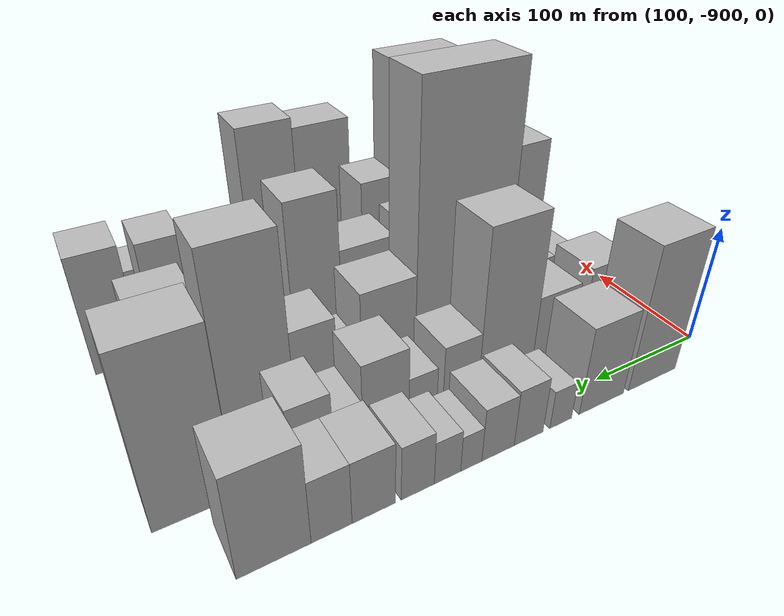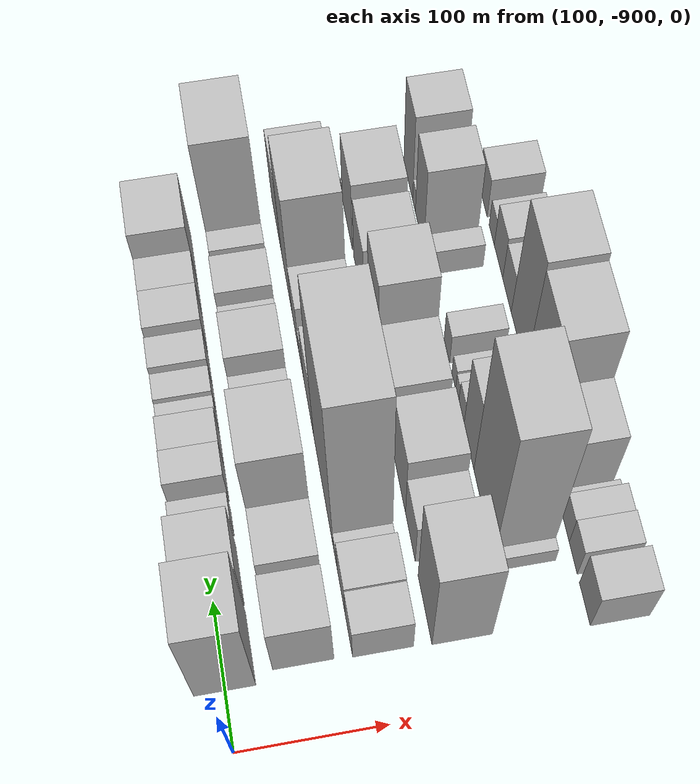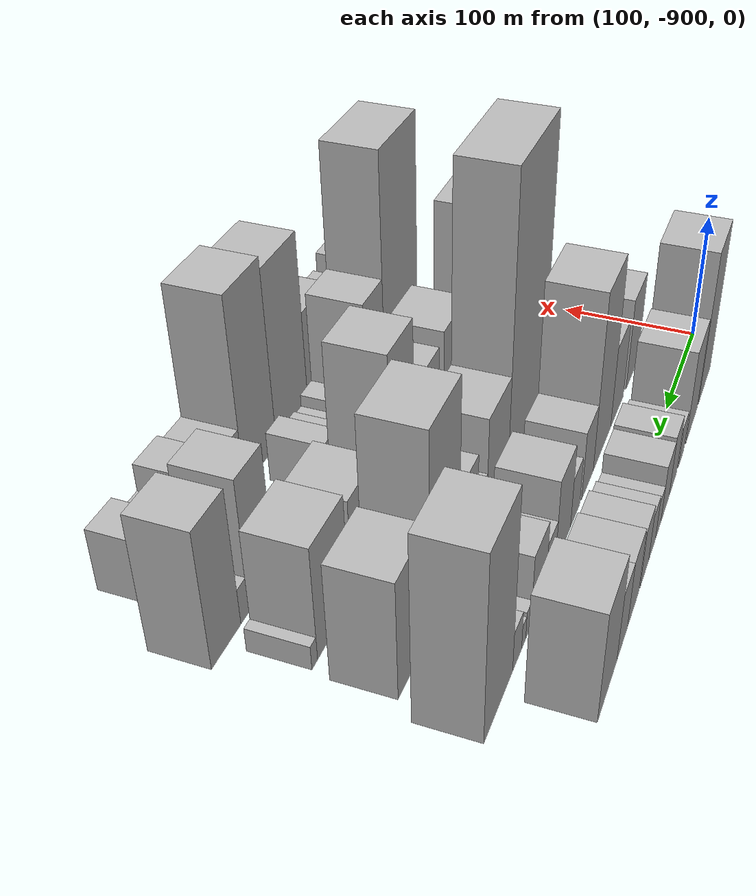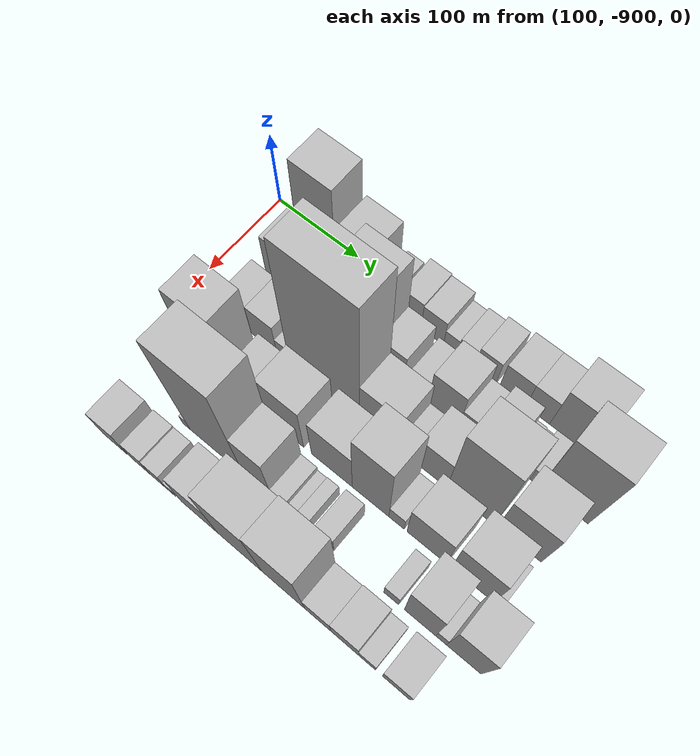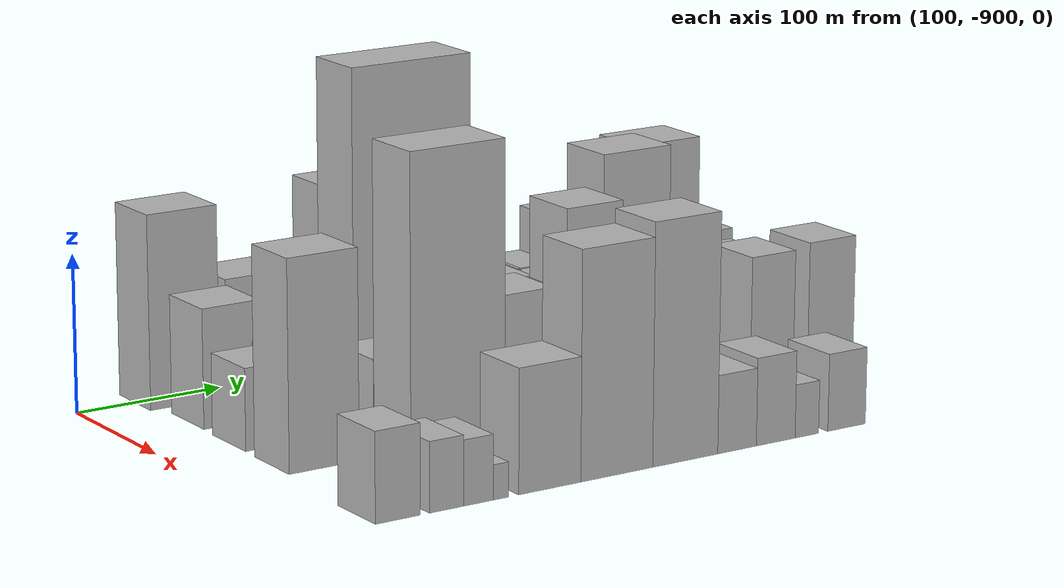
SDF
<sdf version="1.6">
 <world name="default">
  <model name="building_1">
   <static>1</static>
   <pose>100.0000 -835.8675 0 0.000000 0.000000 0.000000</pose>
   <link name="link">
    <pose>0 0 61.50 0 0 0</pose>
    <collision name="collision"><geometry><box><size>40.0000 48.2651 123.0000</size></box></geometry></collision>
    <visual name="visual">
     <cast_shadows>0</cast_shadows>
     <geometry><box><size>40.0000 48.2651 123.0000</size></box></geometry>
     <material>
      <script>
       <uri>model://HANNAS_wall/materials/scripts</uri>
       <uri>model://HANNAS_wall/materials/textures</uri>
       <name>vrc/HANNAS_wall</name>
      </script>
     </material>
    </visual>
   </link>
  </model>
  <model name="building_2">
   <static>1</static>
   <pose>100.0000 -785.6989 0 0.000000 0.000000 0.000000</pose>
   <link name="link">
    <pose>0 0 37.50 0 0 0</pose>
    <collision name="collision"><geometry><box><size>40.0000 42.0720 75.0000</size></box></geometry></collision>
    <visual name="visual">
     <cast_shadows>0</cast_shadows>
     <geometry><box><size>40.0000 42.0720 75.0000</size></box></geometry>
     <material>
      <script>
       <uri>model://HANNAS_wall/materials/scripts</uri>
       <uri>model://HANNAS_wall/materials/textures</uri>
       <name>vrc/HANNAS_wall</name>
      </script>
     </material>
    </visual>
   </link>
  </model>
  <model name="building_3">
   <static>1</static>
   <pose>100.0000 -747.9911 0 0.000000 0.000000 0.000000</pose>
   <link name="link">
    <pose>0 0 16.50 0 0 0</pose>
    <collision name="collision"><geometry><box><size>40.0000 19.3437 33.0000</size></box></geometry></collision>
    <visual name="visual">
     <cast_shadows>0</cast_shadows>
     <geometry><box><size>40.0000 19.3437 33.0000</size></box></geometry>
     <material>
      <script>
       <uri>model://HANNAS_wall/materials/scripts</uri>
       <uri>model://HANNAS_wall/materials/textures</uri>
       <name>vrc/HANNAS_wall</name>
      </script>
     </material>
    </visual>
   </link>
  </model>
  <model name="building_4">
   <static>1</static>
   <pose>100.0000 -720.0713 0 0.000000 0.000000 0.000000</pose>
   <link name="link">
    <pose>0 0 24.00 0 0 0</pose>
    <collision name="collision"><geometry><box><size>40.0000 24.4960 48.0000</size></box></geometry></collision>
    <visual name="visual">
     <cast_shadows>0</cast_shadows>
     <geometry><box><size>40.0000 24.4960 48.0000</size></box></geometry>
     <material>
      <script>
       <uri>model://HANNAS_wall/materials/scripts</uri>
       <uri>model://HANNAS_wall/materials/textures</uri>
       <name>vrc/HANNAS_wall</name>
      </script>
     </material>
    </visual>
   </link>
  </model>
  <model name="building_5">
   <static>1</static>
   <pose>100.0000 -694.7094 0 0.000000 0.000000 0.000000</pose>
   <link name="link">
    <pose>0 0 22.50 0 0 0</pose>
    <collision name="collision"><geometry><box><size>40.0000 26.2278 45.0000</size></box></geometry></collision>
    <visual name="visual">
     <cast_shadows>0</cast_shadows>
     <geometry><box><size>40.0000 26.2278 45.0000</size></box></geometry>
     <material>
      <script>
       <uri>model://HANNAS_wall/materials/scripts</uri>
       <uri>model://HANNAS_wall/materials/textures</uri>
       <name>vrc/HANNAS_wall</name>
      </script>
     </material>
    </visual>
   </link>
  </model>
  <model name="building_6">
   <static>1</static>
   <pose>100.0000 -673.3801 0 0.000000 0.000000 0.000000</pose>
   <link name="link">
    <pose>0 0 15.00 0 0 0</pose>
    <collision name="collision"><geometry><box><size>40.0000 16.4307 30.0000</size></box></geometry></collision>
    <visual name="visual">
     <cast_shadows>0</cast_shadows>
     <geometry><box><size>40.0000 16.4307 30.0000</size></box></geometry>
     <material>
      <script>
       <uri>model://HANNAS_wall/materials/scripts</uri>
       <uri>model://HANNAS_wall/materials/textures</uri>
       <name>vrc/HANNAS_wall</name>
      </script>
     </material>
    </visual>
   </link>
  </model>
  <model name="building_7">
   <static>1</static>
   <pose>100.0000 -655.2093 0 0.000000 0.000000 0.000000</pose>
   <link name="link">
    <pose>0 0 18.00 0 0 0</pose>
    <collision name="collision"><geometry><box><size>40.0000 19.9109 36.0000</size></box></geometry></collision>
    <visual name="visual">
     <cast_shadows>0</cast_shadows>
     <geometry><box><size>40.0000 19.9109 36.0000</size></box></geometry>
     <material>
      <script>
       <uri>model://HANNAS_wall/materials/scripts</uri>
       <uri>model://HANNAS_wall/materials/textures</uri>
       <name>vrc/HANNAS_wall</name>
      </script>
     </material>
    </visual>
   </link>
  </model>
  <model name="building_8">
   <static>1</static>
   <pose>100.0000 -633.3928 0 0.000000 0.000000 0.000000</pose>
   <link name="link">
    <pose>0 0 22.50 0 0 0</pose>
    <collision name="collision"><geometry><box><size>40.0000 23.7222 45.0000</size></box></geometry></collision>
    <visual name="visual">
     <cast_shadows>0</cast_shadows>
     <geometry><box><size>40.0000 23.7222 45.0000</size></box></geometry>
     <material>
      <script>
       <uri>model://HANNAS_wall/materials/scripts</uri>
       <uri>model://HANNAS_wall/materials/textures</uri>
       <name>vrc/HANNAS_wall</name>
      </script>
     </material>
    </visual>
   </link>
  </model>
  <model name="building_9">
   <static>1</static>
   <pose>100.0000 -602.8302 0 0.000000 0.000000 0.000000</pose>
   <link name="link">
    <pose>0 0 25.50 0 0 0</pose>
    <collision name="collision"><geometry><box><size>40.0000 29.4031 51.0000</size></box></geometry></collision>
    <visual name="visual">
     <cast_shadows>0</cast_shadows>
     <geometry><box><size>40.0000 29.4031 51.0000</size></box></geometry>
     <material>
      <script>
       <uri>model://HANNAS_wall/materials/scripts</uri>
       <uri>model://HANNAS_wall/materials/textures</uri>
       <name>vrc/HANNAS_wall</name>
      </script>
     </material>
    </visual>
   </link>
  </model>
  <model name="building_10">
   <static>1</static>
   <pose>100.0000 -575.0428 0 0.000000 0.000000 0.000000</pose>
   <link name="link">
    <pose>0 0 25.50 0 0 0</pose>
    <collision name="collision"><geometry><box><size>40.0000 26.1718 51.0000</size></box></geometry></collision>
    <visual name="visual">
     <cast_shadows>0</cast_shadows>
     <geometry><box><size>40.0000 26.1718 51.0000</size></box></geometry>
     <material>
      <script>
       <uri>model://HANNAS_wall/materials/scripts</uri>
       <uri>model://HANNAS_wall/materials/textures</uri>
       <name>vrc/HANNAS_wall</name>
      </script>
     </material>
    </visual>
   </link>
  </model>
  <model name="building_11">
   <static>1</static>
   <pose>100.0000 -539.6976 0 0.000000 0.000000 0.000000</pose>
   <link name="link">
    <pose>0 0 40.50 0 0 0</pose>
    <collision name="collision"><geometry><box><size>40.0000 44.5184 81.0000</size></box></geometry></collision>
    <visual name="visual">
     <cast_shadows>0</cast_shadows>
     <geometry><box><size>40.0000 44.5184 81.0000</size></box></geometry>
     <material>
      <script>
       <uri>model://HANNAS_wall/materials/scripts</uri>
       <uri>model://HANNAS_wall/materials/textures</uri>
       <name>vrc/HANNAS_wall</name>
      </script>
     </material>
    </visual>
   </link>
  </model>
  <model name="building_59">
   <static>1</static>
   <pose>152.0000 -832.2248 0 0.000000 0.000000 0.000000</pose>
   <link name="link">
    <pose>0 0 37.50 0 0 0</pose>
    <collision name="collision"><geometry><box><size>40.0000 39.5504 75.0000</size></box></geometry></collision>
    <visual name="visual">
     <cast_shadows>0</cast_shadows>
     <geometry><box><size>40.0000 39.5504 75.0000</size></box></geometry>
     <material>
      <script>
       <uri>model://HANNAS_wall/materials/scripts</uri>
       <uri>model://HANNAS_wall/materials/textures</uri>
       <name>vrc/HANNAS_wall</name>
      </script>
     </material>
    </visual>
   </link>
  </model>
  <model name="building_60">
   <static>1</static>
   <pose>152.0000 -784.2301 0 0.000000 0.000000 0.000000</pose>
   <link name="link">
    <pose>0 0 33.00 0 0 0</pose>
    <collision name="collision"><geometry><box><size>40.0000 38.4390 66.0000</size></box></geometry></collision>
    <visual name="visual">
     <cast_shadows>0</cast_shadows>
     <geometry><box><size>40.0000 38.4390 66.0000</size></box></geometry>
     <material>
      <script>
       <uri>model://HANNAS_wall/materials/scripts</uri>
       <uri>model://HANNAS_wall/materials/textures</uri>
       <name>vrc/HANNAS_wall</name>
      </script>
     </material>
    </visual>
   </link>
  </model>
  <model name="building_61">
   <static>1</static>
   <pose>152.0000 -740.5774 0 0.000000 0.000000 0.000000</pose>
   <link name="link">
    <pose>0 0 69.00 0 0 0</pose>
    <collision name="collision"><geometry><box><size>40.0000 48.8663 138.0000</size></box></geometry></collision>
    <visual name="visual">
     <cast_shadows>0</cast_shadows>
     <geometry><box><size>40.0000 48.8663 138.0000</size></box></geometry>
     <material>
      <script>
       <uri>model://HANNAS_wall/materials/scripts</uri>
       <uri>model://HANNAS_wall/materials/textures</uri>
       <name>vrc/HANNAS_wall</name>
      </script>
     </material>
    </visual>
   </link>
  </model>
  <model name="building_62">
   <static>1</static>
   <pose>152.0000 -700.9382 0 0.000000 0.000000 0.000000</pose>
   <link name="link">
    <pose>0 0 27.00 0 0 0</pose>
    <collision name="collision"><geometry><box><size>40.0000 30.4121 54.0000</size></box></geometry></collision>
    <visual name="visual">
     <cast_shadows>0</cast_shadows>
     <geometry><box><size>40.0000 30.4121 54.0000</size></box></geometry>
     <material>
      <script>
       <uri>model://HANNAS_wall/materials/scripts</uri>
       <uri>model://HANNAS_wall/materials/textures</uri>
       <name>vrc/HANNAS_wall</name>
      </script>
     </material>
    </visual>
   </link>
  </model>
  <model name="building_63">
   <static>1</static>
   <pose>152.0000 -669.3956 0 0.000000 0.000000 0.000000</pose>
   <link name="link">
    <pose>0 0 19.50 0 0 0</pose>
    <collision name="collision"><geometry><box><size>40.0000 22.6730 39.0000</size></box></geometry></collision>
    <visual name="visual">
     <cast_shadows>0</cast_shadows>
     <geometry><box><size>40.0000 22.6730 39.0000</size></box></geometry>
     <material>
      <script>
       <uri>model://HANNAS_wall/materials/scripts</uri>
       <uri>model://HANNAS_wall/materials/textures</uri>
       <name>vrc/HANNAS_wall</name>
      </script>
     </material>
    </visual>
   </link>
  </model>
  <model name="building_64">
   <static>1</static>
   <pose>152.0000 -640.3801 0 0.000000 0.000000 0.000000</pose>
   <link name="link">
    <pose>0 0 33.00 0 0 0</pose>
    <collision name="collision"><geometry><box><size>40.0000 35.3580 66.0000</size></box></geometry></collision>
    <visual name="visual">
     <cast_shadows>0</cast_shadows>
     <geometry><box><size>40.0000 35.3580 66.0000</size></box></geometry>
     <material>
      <script>
       <uri>model://HANNAS_wall/materials/scripts</uri>
       <uri>model://HANNAS_wall/materials/textures</uri>
       <name>vrc/HANNAS_wall</name>
      </script>
     </material>
    </visual>
   </link>
  </model>
  <model name="building_65">
   <static>1</static>
   <pose>152.0000 -612.0106 0 0.000000 0.000000 0.000000</pose>
   <link name="link">
    <pose>0 0 18.00 0 0 0</pose>
    <collision name="collision"><geometry><box><size>40.0000 21.3810 36.0000</size></box></geometry></collision>
    <visual name="visual">
     <cast_shadows>0</cast_shadows>
     <geometry><box><size>40.0000 21.3810 36.0000</size></box></geometry>
     <material>
      <script>
       <uri>model://HANNAS_wall/materials/scripts</uri>
       <uri>model://HANNAS_wall/materials/textures</uri>
       <name>vrc/HANNAS_wall</name>
      </script>
     </material>
    </visual>
   </link>
  </model>
  <model name="building_66">
   <static>1</static>
   <pose>152.0000 -586.1350 0 0.000000 0.000000 0.000000</pose>
   <link name="link">
    <pose>0 0 27.00 0 0 0</pose>
    <collision name="collision"><geometry><box><size>40.0000 30.3704 54.0000</size></box></geometry></collision>
    <visual name="visual">
     <cast_shadows>0</cast_shadows>
     <geometry><box><size>40.0000 30.3704 54.0000</size></box></geometry>
     <material>
      <script>
       <uri>model://HANNAS_wall/materials/scripts</uri>
       <uri>model://HANNAS_wall/materials/textures</uri>
       <name>vrc/HANNAS_wall</name>
      </script>
     </material>
    </visual>
   </link>
  </model>
  <model name="building_67">
   <static>1</static>
   <pose>152.0000 -565.7380 0 0.000000 0.000000 0.000000</pose>
   <link name="link">
    <pose>0 0 10.50 0 0 0</pose>
    <collision name="collision"><geometry><box><size>40.0000 10.4235 21.0000</size></box></geometry></collision>
    <visual name="visual">
     <cast_shadows>0</cast_shadows>
     <geometry><box><size>40.0000 10.4235 21.0000</size></box></geometry>
     <material>
      <script>
       <uri>model://HANNAS_wall/materials/scripts</uri>
       <uri>model://HANNAS_wall/materials/textures</uri>
       <name>vrc/HANNAS_wall</name>
      </script>
     </material>
    </visual>
   </link>
  </model>
  <model name="building_68">
   <static>1</static>
   <pose>152.0000 -556.4889 0 0.000000 0.000000 0.000000</pose>
   <link name="link">
    <pose>0 0 9.00 0 0 0</pose>
    <collision name="collision"><geometry><box><size>40.0000 8.0748 18.0000</size></box></geometry></collision>
    <visual name="visual">
     <cast_shadows>0</cast_shadows>
     <geometry><box><size>40.0000 8.0748 18.0000</size></box></geometry>
     <material>
      <script>
       <uri>model://HANNAS_wall/materials/scripts</uri>
       <uri>model://HANNAS_wall/materials/textures</uri>
       <name>vrc/HANNAS_wall</name>
      </script>
     </material>
    </visual>
   </link>
  </model>
  <model name="building_69">
   <static>1</static>
   <pose>152.0000 -543.8938 0 0.000000 0.000000 0.000000</pose>
   <link name="link">
    <pose>0 0 15.00 0 0 0</pose>
    <collision name="collision"><geometry><box><size>40.0000 17.1153 30.0000</size></box></geometry></collision>
    <visual name="visual">
     <cast_shadows>0</cast_shadows>
     <geometry><box><size>40.0000 17.1153 30.0000</size></box></geometry>
     <material>
      <script>
       <uri>model://HANNAS_wall/materials/scripts</uri>
       <uri>model://HANNAS_wall/materials/textures</uri>
       <name>vrc/HANNAS_wall</name>
      </script>
     </material>
    </visual>
   </link>
  </model>
  <model name="building_70">
   <static>1</static>
   <pose>152.0000 -509.8802 0 0.000000 0.000000 0.000000</pose>
   <link name="link">
    <pose>0 0 67.50 0 0 0</pose>
    <collision name="collision"><geometry><box><size>40.0000 50.9121 135.0000</size></box></geometry></collision>
    <visual name="visual">
     <cast_shadows>0</cast_shadows>
     <geometry><box><size>40.0000 50.9121 135.0000</size></box></geometry>
     <material>
      <script>
       <uri>model://HANNAS_wall/materials/scripts</uri>
       <uri>model://HANNAS_wall/materials/textures</uri>
       <name>vrc/HANNAS_wall</name>
      </script>
     </material>
    </visual>
   </link>
  </model>
  <model name="building_112">
   <static>1</static>
   <pose>204.0000 -838.8723 0 0.000000 0.000000 0.000000</pose>
   <link name="link">
    <pose>0 0 25.50 0 0 0</pose>
    <collision name="collision"><geometry><box><size>40.0000 28.2554 51.0000</size></box></geometry></collision>
    <visual name="visual">
     <cast_shadows>0</cast_shadows>
     <geometry><box><size>40.0000 28.2554 51.0000</size></box></geometry>
     <material>
      <script>
       <uri>model://HANNAS_wall/materials/scripts</uri>
       <uri>model://HANNAS_wall/materials/textures</uri>
       <name>vrc/HANNAS_wall</name>
      </script>
     </material>
    </visual>
   </link>
  </model>
  <model name="building_113">
   <static>1</static>
   <pose>204.0000 -809.0320 0 0.000000 0.000000 0.000000</pose>
   <link name="link">
    <pose>0 0 27.00 0 0 0</pose>
    <collision name="collision"><geometry><box><size>40.0000 31.4252 54.0000</size></box></geometry></collision>
    <visual name="visual">
     <cast_shadows>0</cast_shadows>
     <geometry><box><size>40.0000 31.4252 54.0000</size></box></geometry>
     <material>
      <script>
       <uri>model://HANNAS_wall/materials/scripts</uri>
       <uri>model://HANNAS_wall/materials/textures</uri>
       <name>vrc/HANNAS_wall</name>
      </script>
     </material>
    </visual>
   </link>
  </model>
  <model name="building_114">
   <static>1</static>
   <pose>204.0000 -785.6874 0 0.000000 0.000000 0.000000</pose>
   <link name="link">
    <pose>0 0 15.00 0 0 0</pose>
    <collision name="collision"><geometry><box><size>40.0000 15.2639 30.0000</size></box></geometry></collision>
    <visual name="visual">
     <cast_shadows>0</cast_shadows>
     <geometry><box><size>40.0000 15.2639 30.0000</size></box></geometry>
     <material>
      <script>
       <uri>model://HANNAS_wall/materials/scripts</uri>
       <uri>model://HANNAS_wall/materials/textures</uri>
       <name>vrc/HANNAS_wall</name>
      </script>
     </material>
    </visual>
   </link>
  </model>
  <model name="building_115">
   <static>1</static>
   <pose>204.0000 -736.5091 0 0.000000 0.000000 0.000000</pose>
   <link name="link">
    <pose>0 0 111.00 0 0 0</pose>
    <collision name="collision"><geometry><box><size>40.0000 83.0926 222.0000</size></box></geometry></collision>
    <visual name="visual">
     <cast_shadows>0</cast_shadows>
     <geometry><box><size>40.0000 83.0926 222.0000</size></box></geometry>
     <material>
      <script>
       <uri>model://HANNAS_wall/materials/scripts</uri>
       <uri>model://HANNAS_wall/materials/textures</uri>
       <name>vrc/HANNAS_wall</name>
      </script>
     </material>
    </visual>
   </link>
  </model>
  <model name="building_116">
   <static>1</static>
   <pose>204.0000 -672.1722 0 0.000000 0.000000 0.000000</pose>
   <link name="link">
    <pose>0 0 39.00 0 0 0</pose>
    <collision name="collision"><geometry><box><size>40.0000 45.5812 78.0000</size></box></geometry></collision>
    <visual name="visual">
     <cast_shadows>0</cast_shadows>
     <geometry><box><size>40.0000 45.5812 78.0000</size></box></geometry>
     <material>
      <script>
       <uri>model://HANNAS_wall/materials/scripts</uri>
       <uri>model://HANNAS_wall/materials/textures</uri>
       <name>vrc/HANNAS_wall</name>
      </script>
     </material>
    </visual>
   </link>
  </model>
  <model name="building_117">
   <static>1</static>
   <pose>204.0000 -639.7111 0 0.000000 0.000000 0.000000</pose>
   <link name="link">
    <pose>0 0 18.00 0 0 0</pose>
    <collision name="collision"><geometry><box><size>40.0000 19.3409 36.0000</size></box></geometry></collision>
    <visual name="visual">
     <cast_shadows>0</cast_shadows>
     <geometry><box><size>40.0000 19.3409 36.0000</size></box></geometry>
     <material>
      <script>
       <uri>model://HANNAS_wall/materials/scripts</uri>
       <uri>model://HANNAS_wall/materials/textures</uri>
       <name>vrc/HANNAS_wall</name>
      </script>
     </material>
    </visual>
   </link>
  </model>
  <model name="building_118">
   <static>1</static>
   <pose>204.0000 -613.2335 0 0.000000 0.000000 0.000000</pose>
   <link name="link">
    <pose>0 0 33.00 0 0 0</pose>
    <collision name="collision"><geometry><box><size>40.0000 33.6143 66.0000</size></box></geometry></collision>
    <visual name="visual">
     <cast_shadows>0</cast_shadows>
     <geometry><box><size>40.0000 33.6143 66.0000</size></box></geometry>
     <material>
      <script>
       <uri>model://HANNAS_wall/materials/scripts</uri>
       <uri>model://HANNAS_wall/materials/textures</uri>
       <name>vrc/HANNAS_wall</name>
      </script>
     </material>
    </visual>
   </link>
  </model>
  <model name="building_119">
   <static>1</static>
   <pose>204.0000 -571.0048 0 0.000000 0.000000 0.000000</pose>
   <link name="link">
    <pose>0 0 73.50 0 0 0</pose>
    <collision name="collision"><geometry><box><size>40.0000 50.8432 147.0000</size></box></geometry></collision>
    <visual name="visual">
     <cast_shadows>0</cast_shadows>
     <geometry><box><size>40.0000 50.8432 147.0000</size></box></geometry>
     <material>
      <script>
       <uri>model://HANNAS_wall/materials/scripts</uri>
       <uri>model://HANNAS_wall/materials/textures</uri>
       <name>vrc/HANNAS_wall</name>
      </script>
     </material>
    </visual>
   </link>
  </model>
  <model name="building_120">
   <static>1</static>
   <pose>204.0000 -519.3461 0 0.000000 0.000000 0.000000</pose>
   <link name="link">
    <pose>0 0 43.50 0 0 0</pose>
    <collision name="collision"><geometry><box><size>40.0000 46.4740 87.0000</size></box></geometry></collision>
    <visual name="visual">
     <cast_shadows>0</cast_shadows>
     <geometry><box><size>40.0000 46.4740 87.0000</size></box></geometry>
     <material>
      <script>
       <uri>model://HANNAS_wall/materials/scripts</uri>
       <uri>model://HANNAS_wall/materials/textures</uri>
       <name>vrc/HANNAS_wall</name>
      </script>
     </material>
    </visual>
   </link>
  </model>
  <model name="building_160">
   <static>1</static>
   <pose>256.0000 -830.2845 0 0.000000 0.000000 0.000000</pose>
   <link name="link">
    <pose>0 0 64.50 0 0 0</pose>
    <collision name="collision"><geometry><box><size>40.0000 47.4311 129.0000</size></box></geometry></collision>
    <visual name="visual">
     <cast_shadows>0</cast_shadows>
     <geometry><box><size>40.0000 47.4311 129.0000</size></box></geometry>
     <material>
      <script>
       <uri>model://HANNAS_wall/materials/scripts</uri>
       <uri>model://HANNAS_wall/materials/textures</uri>
       <name>vrc/HANNAS_wall</name>
      </script>
     </material>
    </visual>
   </link>
  </model>
  <model name="building_161">
   <static>1</static>
   <pose>256.0000 -779.2573 0 0.000000 0.000000 0.000000</pose>
   <link name="link">
    <pose>0 0 30.00 0 0 0</pose>
    <collision name="collision"><geometry><box><size>40.0000 34.6232 60.0000</size></box></geometry></collision>
    <visual name="visual">
     <cast_shadows>0</cast_shadows>
     <geometry><box><size>40.0000 34.6232 60.0000</size></box></geometry>
     <material>
      <script>
       <uri>model://HANNAS_wall/materials/scripts</uri>
       <uri>model://HANNAS_wall/materials/textures</uri>
       <name>vrc/HANNAS_wall</name>
      </script>
     </material>
    </visual>
   </link>
  </model>
  <model name="building_162">
   <static>1</static>
   <pose>256.0000 -738.6469 0 0.000000 0.000000 0.000000</pose>
   <link name="link">
    <pose>0 0 43.50 0 0 0</pose>
    <collision name="collision"><geometry><box><size>40.0000 46.5975 87.0000</size></box></geometry></collision>
    <visual name="visual">
     <cast_shadows>0</cast_shadows>
     <geometry><box><size>40.0000 46.5975 87.0000</size></box></geometry>
     <material>
      <script>
       <uri>model://HANNAS_wall/materials/scripts</uri>
       <uri>model://HANNAS_wall/materials/textures</uri>
       <name>vrc/HANNAS_wall</name>
      </script>
     </material>
    </visual>
   </link>
  </model>
  <model name="building_163">
   <static>1</static>
   <pose>256.0000 -683.0446 0 0.000000 0.000000 0.000000</pose>
   <link name="link">
    <pose>0 0 40.50 0 0 0</pose>
    <collision name="collision"><geometry><box><size>40.0000 46.6071 81.0000</size></box></geometry></collision>
    <visual name="visual">
     <cast_shadows>0</cast_shadows>
     <geometry><box><size>40.0000 46.6071 81.0000</size></box></geometry>
     <material>
      <script>
       <uri>model://HANNAS_wall/materials/scripts</uri>
       <uri>model://HANNAS_wall/materials/textures</uri>
       <name>vrc/HANNAS_wall</name>
      </script>
     </material>
    </visual>
   </link>
  </model>
  <model name="building_164">
   <static>1</static>
   <pose>256.0000 -639.3700 0 0.000000 0.000000 0.000000</pose>
   <link name="link">
    <pose>0 0 66.00 0 0 0</pose>
    <collision name="collision"><geometry><box><size>40.0000 40.7420 132.0000</size></box></geometry></collision>
    <visual name="visual">
     <cast_shadows>0</cast_shadows>
     <geometry><box><size>40.0000 40.7420 132.0000</size></box></geometry>
     <material>
      <script>
       <uri>model://HANNAS_wall/materials/scripts</uri>
       <uri>model://HANNAS_wall/materials/textures</uri>
       <name>vrc/HANNAS_wall</name>
      </script>
     </material>
    </visual>
   </link>
  </model>
  <model name="building_165">
   <static>1</static>
   <pose>256.0000 -610.5490 0 0.000000 0.000000 0.000000</pose>
   <link name="link">
    <pose>0 0 15.00 0 0 0</pose>
    <collision name="collision"><geometry><box><size>40.0000 16.9000 30.0000</size></box></geometry></collision>
    <visual name="visual">
     <cast_shadows>0</cast_shadows>
     <geometry><box><size>40.0000 16.9000 30.0000</size></box></geometry>
     <material>
      <script>
       <uri>model://HANNAS_wall/materials/scripts</uri>
       <uri>model://HANNAS_wall/materials/textures</uri>
       <name>vrc/HANNAS_wall</name>
      </script>
     </material>
    </visual>
   </link>
  </model>
  <model name="building_166">
   <static>1</static>
   <pose>256.0000 -577.7376 0 0.000000 0.000000 0.000000</pose>
   <link name="link">
    <pose>0 0 37.50 0 0 0</pose>
    <collision name="collision"><geometry><box><size>40.0000 42.7228 75.0000</size></box></geometry></collision>
    <visual name="visual">
     <cast_shadows>0</cast_shadows>
     <geometry><box><size>40.0000 42.7228 75.0000</size></box></geometry>
     <material>
      <script>
       <uri>model://HANNAS_wall/materials/scripts</uri>
       <uri>model://HANNAS_wall/materials/textures</uri>
       <name>vrc/HANNAS_wall</name>
      </script>
     </material>
    </visual>
   </link>
  </model>
  <model name="building_167">
   <static>1</static>
   <pose>256.0000 -529.1499 0 0.000000 0.000000 0.000000</pose>
   <link name="link">
    <pose>0 0 42.00 0 0 0</pose>
    <collision name="collision"><geometry><box><size>40.0000 44.4525 84.0000</size></box></geometry></collision>
    <visual name="visual">
     <cast_shadows>0</cast_shadows>
     <geometry><box><size>40.0000 44.4525 84.0000</size></box></geometry>
     <material>
      <script>
       <uri>model://HANNAS_wall/materials/scripts</uri>
       <uri>model://HANNAS_wall/materials/textures</uri>
       <name>vrc/HANNAS_wall</name>
      </script>
     </material>
    </visual>
   </link>
  </model>
  <model name="building_168">
   <static>1</static>
   <pose>256.0000 -503.1263 0 0.000000 0.000000 0.000000</pose>
   <link name="link">
    <pose>0 0 9.00 0 0 0</pose>
    <collision name="collision"><geometry><box><size>40.0000 7.5948 18.0000</size></box></geometry></collision>
    <visual name="visual">
     <cast_shadows>0</cast_shadows>
     <geometry><box><size>40.0000 7.5948 18.0000</size></box></geometry>
     <material>
      <script>
       <uri>model://HANNAS_wall/materials/scripts</uri>
       <uri>model://HANNAS_wall/materials/textures</uri>
       <name>vrc/HANNAS_wall</name>
      </script>
     </material>
    </visual>
   </link>
  </model>
  <model name="building_213">
   <static>1</static>
   <pose>308.0000 -807.9724 0 0.000000 0.000000 0.000000</pose>
   <link name="link">
    <pose>0 0 10.50 0 0 0</pose>
    <collision name="collision"><geometry><box><size>40.0000 8.6851 21.0000</size></box></geometry></collision>
    <visual name="visual">
     <cast_shadows>0</cast_shadows>
     <geometry><box><size>40.0000 8.6851 21.0000</size></box></geometry>
     <material>
      <script>
       <uri>model://HANNAS_wall/materials/scripts</uri>
       <uri>model://HANNAS_wall/materials/textures</uri>
       <name>vrc/HANNAS_wall</name>
      </script>
     </material>
    </visual>
   </link>
  </model>
  <model name="building_214">
   <static>1</static>
   <pose>308.0000 -771.3071 0 0.000000 0.000000 0.000000</pose>
   <link name="link">
    <pose>0 0 97.50 0 0 0</pose>
    <collision name="collision"><geometry><box><size>40.0000 64.6454 195.0000</size></box></geometry></collision>
    <visual name="visual">
     <cast_shadows>0</cast_shadows>
     <geometry><box><size>40.0000 64.6454 195.0000</size></box></geometry>
     <material>
      <script>
       <uri>model://HANNAS_wall/materials/scripts</uri>
       <uri>model://HANNAS_wall/materials/textures</uri>
       <name>vrc/HANNAS_wall</name>
      </script>
     </material>
    </visual>
   </link>
  </model>
  <model name="building_215">
   <static>1</static>
   <pose>308.0000 -722.1539 0 0.000000 0.000000 0.000000</pose>
   <link name="link">
    <pose>0 0 51.00 0 0 0</pose>
    <collision name="collision"><geometry><box><size>40.0000 33.6611 102.0000</size></box></geometry></collision>
    <visual name="visual">
     <cast_shadows>0</cast_shadows>
     <geometry><box><size>40.0000 33.6611 102.0000</size></box></geometry>
     <material>
      <script>
       <uri>model://HANNAS_wall/materials/scripts</uri>
       <uri>model://HANNAS_wall/materials/textures</uri>
       <name>vrc/HANNAS_wall</name>
      </script>
     </material>
    </visual>
   </link>
  </model>
  <model name="building_216">
   <static>1</static>
   <pose>308.0000 -696.3802 0 0.000000 0.000000 0.000000</pose>
   <link name="link">
    <pose>0 0 16.50 0 0 0</pose>
    <collision name="collision"><geometry><box><size>40.0000 17.8863 33.0000</size></box></geometry></collision>
    <visual name="visual">
     <cast_shadows>0</cast_shadows>
     <geometry><box><size>40.0000 17.8863 33.0000</size></box></geometry>
     <material>
      <script>
       <uri>model://HANNAS_wall/materials/scripts</uri>
       <uri>model://HANNAS_wall/materials/textures</uri>
       <name>vrc/HANNAS_wall</name>
      </script>
     </material>
    </visual>
   </link>
  </model>
  <model name="building_217">
   <static>1</static>
   <pose>308.0000 -682.0433 0 0.000000 0.000000 0.000000</pose>
   <link name="link">
    <pose>0 0 12.00 0 0 0</pose>
    <collision name="collision"><geometry><box><size>40.0000 10.7873 24.0000</size></box></geometry></collision>
    <visual name="visual">
     <cast_shadows>0</cast_shadows>
     <geometry><box><size>40.0000 10.7873 24.0000</size></box></geometry>
     <material>
      <script>
       <uri>model://HANNAS_wall/materials/scripts</uri>
       <uri>model://HANNAS_wall/materials/textures</uri>
       <name>vrc/HANNAS_wall</name>
      </script>
     </material>
    </visual>
   </link>
  </model>
  <model name="building_218">
   <static>1</static>
   <pose>308.0000 -670.2209 0 0.000000 0.000000 0.000000</pose>
   <link name="link">
    <pose>0 0 13.50 0 0 0</pose>
    <collision name="collision"><geometry><box><size>40.0000 12.8575 27.0000</size></box></geometry></collision>
    <visual name="visual">
     <cast_shadows>0</cast_shadows>
     <geometry><box><size>40.0000 12.8575 27.0000</size></box></geometry>
     <material>
      <script>
       <uri>model://HANNAS_wall/materials/scripts</uri>
       <uri>model://HANNAS_wall/materials/textures</uri>
       <name>vrc/HANNAS_wall</name>
      </script>
     </material>
    </visual>
   </link>
  </model>
  <model name="building_219">
   <static>1</static>
   <pose>308.0000 -645.9053 0 0.000000 0.000000 0.000000</pose>
   <link name="link">
    <pose>0 0 19.50 0 0 0</pose>
    <collision name="collision"><geometry><box><size>40.0000 19.7738 39.0000</size></box></geometry></collision>
    <visual name="visual">
     <cast_shadows>0</cast_shadows>
     <geometry><box><size>40.0000 19.7738 39.0000</size></box></geometry>
     <material>
      <script>
       <uri>model://HANNAS_wall/materials/scripts</uri>
       <uri>model://HANNAS_wall/materials/textures</uri>
       <name>vrc/HANNAS_wall</name>
      </script>
     </material>
    </visual>
   </link>
  </model>
  <model name="building_220">
   <static>1</static>
   <pose>308.0000 -574.0321 0 0.000000 0.000000 0.000000</pose>
   <link name="link">
    <pose>0 0 15.00 0 0 0</pose>
    <collision name="collision"><geometry><box><size>40.0000 15.9909 30.0000</size></box></geometry></collision>
    <visual name="visual">
     <cast_shadows>0</cast_shadows>
     <geometry><box><size>40.0000 15.9909 30.0000</size></box></geometry>
     <material>
      <script>
       <uri>model://HANNAS_wall/materials/scripts</uri>
       <uri>model://HANNAS_wall/materials/textures</uri>
       <name>vrc/HANNAS_wall</name>
      </script>
     </material>
    </visual>
   </link>
  </model>
  <model name="building_221">
   <static>1</static>
   <pose>308.0000 -543.6174 0 0.000000 0.000000 0.000000</pose>
   <link name="link">
    <pose>0 0 49.50 0 0 0</pose>
    <collision name="collision"><geometry><box><size>40.0000 32.8385 99.0000</size></box></geometry></collision>
    <visual name="visual">
     <cast_shadows>0</cast_shadows>
     <geometry><box><size>40.0000 32.8385 99.0000</size></box></geometry>
     <material>
      <script>
       <uri>model://HANNAS_wall/materials/scripts</uri>
       <uri>model://HANNAS_wall/materials/textures</uri>
       <name>vrc/HANNAS_wall</name>
      </script>
     </material>
    </visual>
   </link>
  </model>
  <model name="building_222">
   <static>1</static>
   <pose>308.0000 -521.6929 0 0.000000 0.000000 0.000000</pose>
   <link name="link">
    <pose>0 0 13.50 0 0 0</pose>
    <collision name="collision"><geometry><box><size>40.0000 11.0104 27.0000</size></box></geometry></collision>
    <visual name="visual">
     <cast_shadows>0</cast_shadows>
     <geometry><box><size>40.0000 11.0104 27.0000</size></box></geometry>
     <material>
      <script>
       <uri>model://HANNAS_wall/materials/scripts</uri>
       <uri>model://HANNAS_wall/materials/textures</uri>
       <name>vrc/HANNAS_wall</name>
      </script>
     </material>
    </visual>
   </link>
  </model>
  <model name="building_223">
   <static>1</static>
   <pose>308.0000 -498.4821 0 0.000000 0.000000 0.000000</pose>
   <link name="link">
    <pose>0 0 51.00 0 0 0</pose>
    <collision name="collision"><geometry><box><size>40.0000 35.4113 102.0000</size></box></geometry></collision>
    <visual name="visual">
     <cast_shadows>0</cast_shadows>
     <geometry><box><size>40.0000 35.4113 102.0000</size></box></geometry>
     <material>
      <script>
       <uri>model://HANNAS_wall/materials/scripts</uri>
       <uri>model://HANNAS_wall/materials/textures</uri>
       <name>vrc/HANNAS_wall</name>
      </script>
     </material>
    </visual>
   </link>
  </model>
  <model name="building_263">
   <static>1</static>
   <pose>360.0000 -845.1510 0 0.000000 0.000000 0.000000</pose>
   <link name="link">
    <pose>0 0 27.00 0 0 0</pose>
    <collision name="collision"><geometry><box><size>40.0000 29.6979 54.0000</size></box></geometry></collision>
    <visual name="visual">
     <cast_shadows>0</cast_shadows>
     <geometry><box><size>40.0000 29.6979 54.0000</size></box></geometry>
     <material>
      <script>
       <uri>model://HANNAS_wall/materials/scripts</uri>
       <uri>model://HANNAS_wall/materials/textures</uri>
       <name>vrc/HANNAS_wall</name>
      </script>
     </material>
    </visual>
   </link>
  </model>
  <model name="building_264">
   <static>1</static>
   <pose>360.0000 -812.9393 0 0.000000 0.000000 0.000000</pose>
   <link name="link">
    <pose>0 0 21.00 0 0 0</pose>
    <collision name="collision"><geometry><box><size>40.0000 22.7256 42.0000</size></box></geometry></collision>
    <visual name="visual">
     <cast_shadows>0</cast_shadows>
     <geometry><box><size>40.0000 22.7256 42.0000</size></box></geometry>
     <material>
      <script>
       <uri>model://HANNAS_wall/materials/scripts</uri>
       <uri>model://HANNAS_wall/materials/textures</uri>
       <name>vrc/HANNAS_wall</name>
      </script>
     </material>
    </visual>
   </link>
  </model>
  <model name="building_265">
   <static>1</static>
   <pose>360.0000 -791.4567 0 0.000000 0.000000 0.000000</pose>
   <link name="link">
    <pose>0 0 19.50 0 0 0</pose>
    <collision name="collision"><geometry><box><size>40.0000 20.2395 39.0000</size></box></geometry></collision>
    <visual name="visual">
     <cast_shadows>0</cast_shadows>
     <geometry><box><size>40.0000 20.2395 39.0000</size></box></geometry>
     <material>
      <script>
       <uri>model://HANNAS_wall/materials/scripts</uri>
       <uri>model://HANNAS_wall/materials/textures</uri>
       <name>vrc/HANNAS_wall</name>
      </script>
     </material>
    </visual>
   </link>
  </model>
  <model name="building_266">
   <static>1</static>
   <pose>360.0000 -776.2494 0 0.000000 0.000000 0.000000</pose>
   <link name="link">
    <pose>0 0 10.50 0 0 0</pose>
    <collision name="collision"><geometry><box><size>40.0000 10.1751 21.0000</size></box></geometry></collision>
    <visual name="visual">
     <cast_shadows>0</cast_shadows>
     <geometry><box><size>40.0000 10.1751 21.0000</size></box></geometry>
     <material>
      <script>
       <uri>model://HANNAS_wall/materials/scripts</uri>
       <uri>model://HANNAS_wall/materials/textures</uri>
       <name>vrc/HANNAS_wall</name>
      </script>
     </material>
    </visual>
   </link>
  </model>
  <model name="building_267">
   <static>1</static>
   <pose>360.0000 -742.6449 0 0.000000 0.000000 0.000000</pose>
   <link name="link">
    <pose>0 0 37.50 0 0 0</pose>
    <collision name="collision"><geometry><box><size>40.0000 43.0340 75.0000</size></box></geometry></collision>
    <visual name="visual">
     <cast_shadows>0</cast_shadows>
     <geometry><box><size>40.0000 43.0340 75.0000</size></box></geometry>
     <material>
      <script>
       <uri>model://HANNAS_wall/materials/scripts</uri>
       <uri>model://HANNAS_wall/materials/textures</uri>
       <name>vrc/HANNAS_wall</name>
      </script>
     </material>
    </visual>
   </link>
  </model>
  <model name="building_268">
   <static>1</static>
   <pose>360.0000 -695.7254 0 0.000000 0.000000 0.000000</pose>
   <link name="link">
    <pose>0 0 69.00 0 0 0</pose>
    <collision name="collision"><geometry><box><size>40.0000 50.8049 138.0000</size></box></geometry></collision>
    <visual name="visual">
     <cast_shadows>0</cast_shadows>
     <geometry><box><size>40.0000 50.8049 138.0000</size></box></geometry>
     <material>
      <script>
       <uri>model://HANNAS_wall/materials/scripts</uri>
       <uri>model://HANNAS_wall/materials/textures</uri>
       <name>vrc/HANNAS_wall</name>
      </script>
     </material>
    </visual>
   </link>
  </model>
  <model name="building_269">
   <static>1</static>
   <pose>360.0000 -646.7373 0 0.000000 0.000000 0.000000</pose>
   <link name="link">
    <pose>0 0 73.50 0 0 0</pose>
    <collision name="collision"><geometry><box><size>40.0000 47.1714 147.0000</size></box></geometry></collision>
    <visual name="visual">
     <cast_shadows>0</cast_shadows>
     <geometry><box><size>40.0000 47.1714 147.0000</size></box></geometry>
     <material>
      <script>
       <uri>model://HANNAS_wall/materials/scripts</uri>
       <uri>model://HANNAS_wall/materials/textures</uri>
       <name>vrc/HANNAS_wall</name>
      </script>
     </material>
    </visual>
   </link>
  </model>
  <model name="building_270">
   <static>1</static>
   <pose>360.0000 -608.9264 0 0.000000 0.000000 0.000000</pose>
   <link name="link">
    <pose>0 0 24.00 0 0 0</pose>
    <collision name="collision"><geometry><box><size>40.0000 28.4504 48.0000</size></box></geometry></collision>
    <visual name="visual">
     <cast_shadows>0</cast_shadows>
     <geometry><box><size>40.0000 28.4504 48.0000</size></box></geometry>
     <material>
      <script>
       <uri>model://HANNAS_wall/materials/scripts</uri>
       <uri>model://HANNAS_wall/materials/textures</uri>
       <name>vrc/HANNAS_wall</name>
      </script>
     </material>
    </visual>
   </link>
  </model>
  <model name="building_271">
   <static>1</static>
   <pose>360.0000 -580.2009 0 0.000000 0.000000 0.000000</pose>
   <link name="link">
    <pose>0 0 27.00 0 0 0</pose>
    <collision name="collision"><geometry><box><size>40.0000 29.0004 54.0000</size></box></geometry></collision>
    <visual name="visual">
     <cast_shadows>0</cast_shadows>
     <geometry><box><size>40.0000 29.0004 54.0000</size></box></geometry>
     <material>
      <script>
       <uri>model://HANNAS_wall/materials/scripts</uri>
       <uri>model://HANNAS_wall/materials/textures</uri>
       <name>vrc/HANNAS_wall</name>
      </script>
     </material>
    </visual>
   </link>
  </model>
  <model name="building_272">
   <static>1</static>
   <pose>360.0000 -556.8022 0 0.000000 0.000000 0.000000</pose>
   <link name="link">
    <pose>0 0 16.50 0 0 0</pose>
    <collision name="collision"><geometry><box><size>40.0000 17.7969 33.0000</size></box></geometry></collision>
    <visual name="visual">
     <cast_shadows>0</cast_shadows>
     <geometry><box><size>40.0000 17.7969 33.0000</size></box></geometry>
     <material>
      <script>
       <uri>model://HANNAS_wall/materials/scripts</uri>
       <uri>model://HANNAS_wall/materials/textures</uri>
       <name>vrc/HANNAS_wall</name>
      </script>
     </material>
    </visual>
   </link>
  </model>
  <model name="building_273">
   <static>1</static>
   <pose>360.0000 -526.5377 0 0.000000 0.000000 0.000000</pose>
   <link name="link">
    <pose>0 0 24.00 0 0 0</pose>
    <collision name="collision"><geometry><box><size>40.0000 28.7321 48.0000</size></box></geometry></collision>
    <visual name="visual">
     <cast_shadows>0</cast_shadows>
     <geometry><box><size>40.0000 28.7321 48.0000</size></box></geometry>
     <material>
      <script>
       <uri>model://HANNAS_wall/materials/scripts</uri>
       <uri>model://HANNAS_wall/materials/textures</uri>
       <name>vrc/HANNAS_wall</name>
      </script>
     </material>
    </visual>
   </link>
  </model>
 </world>
</sdf>
